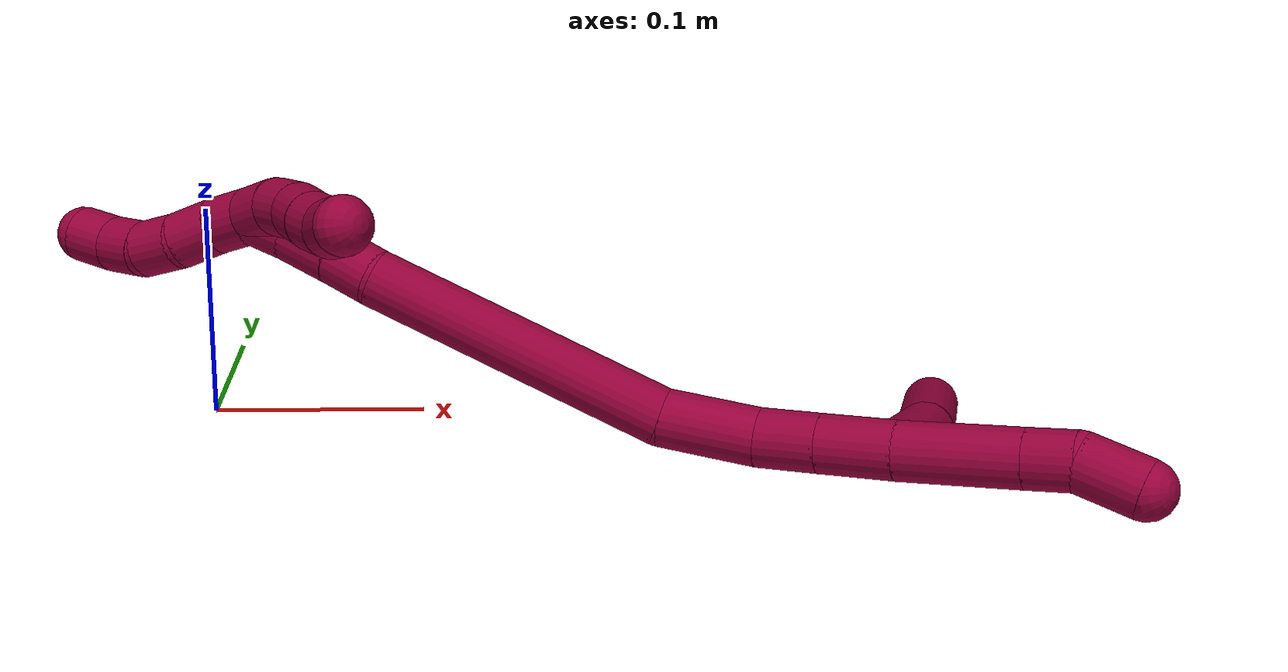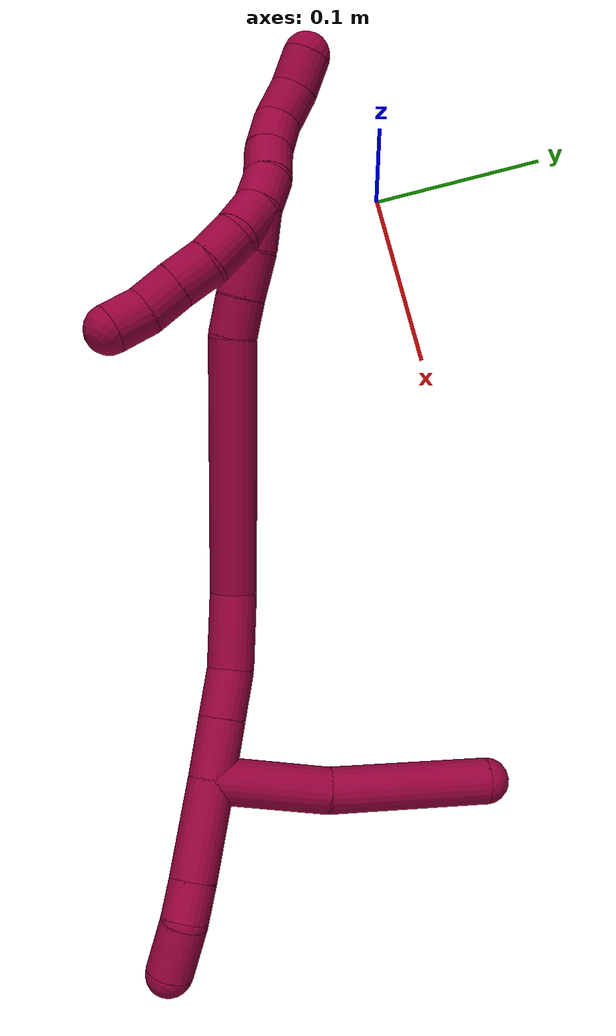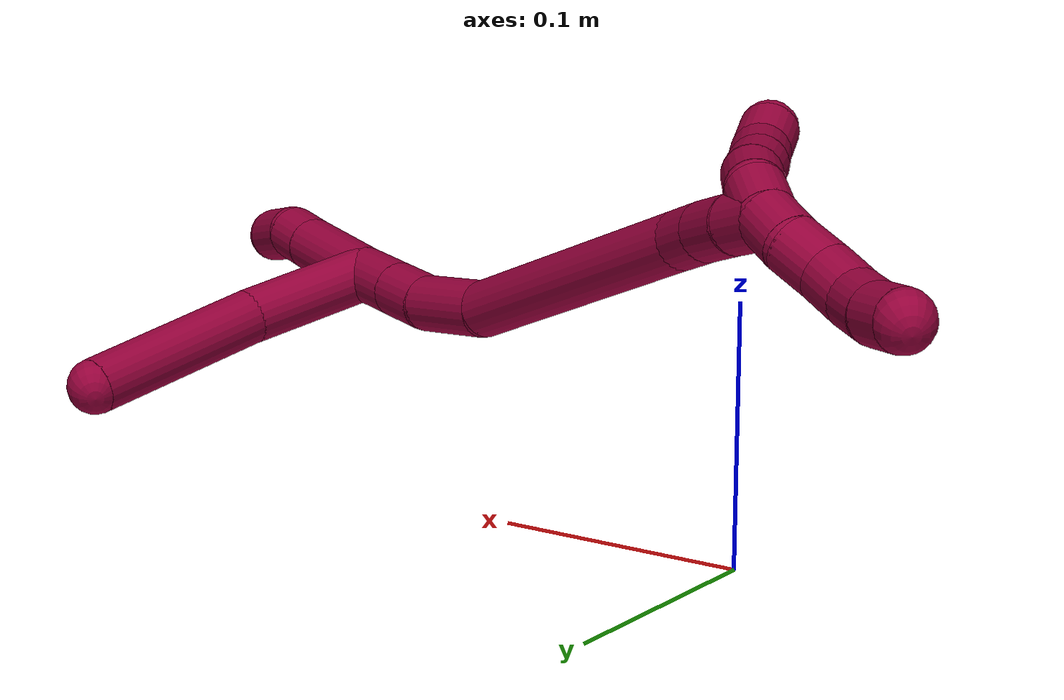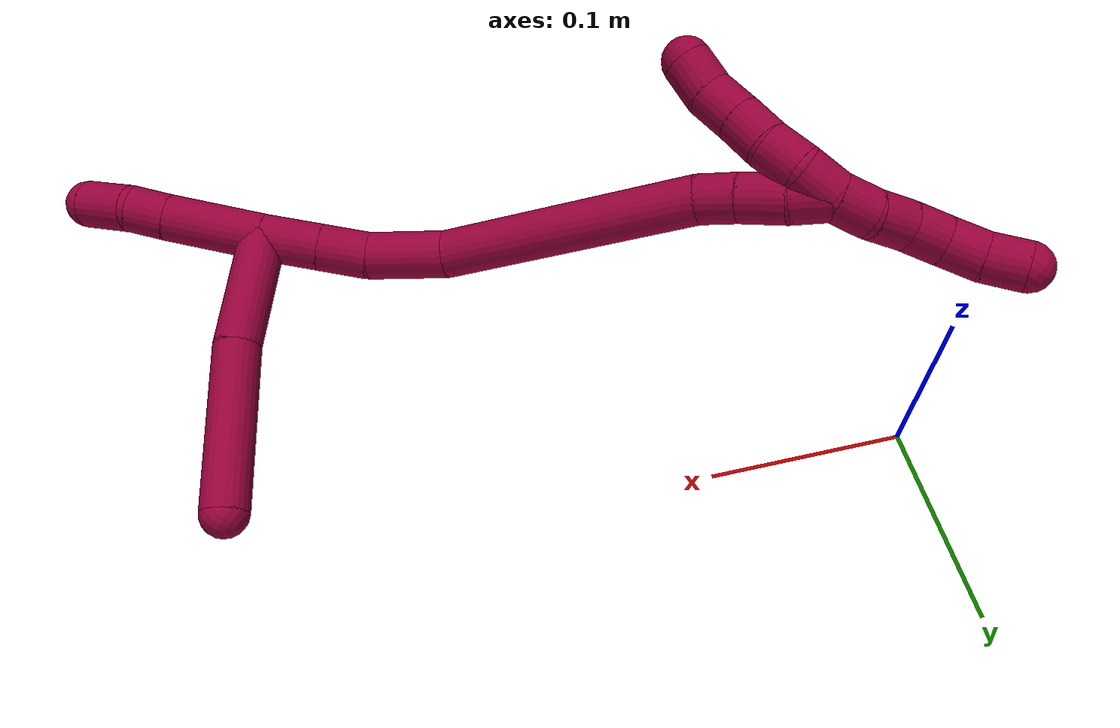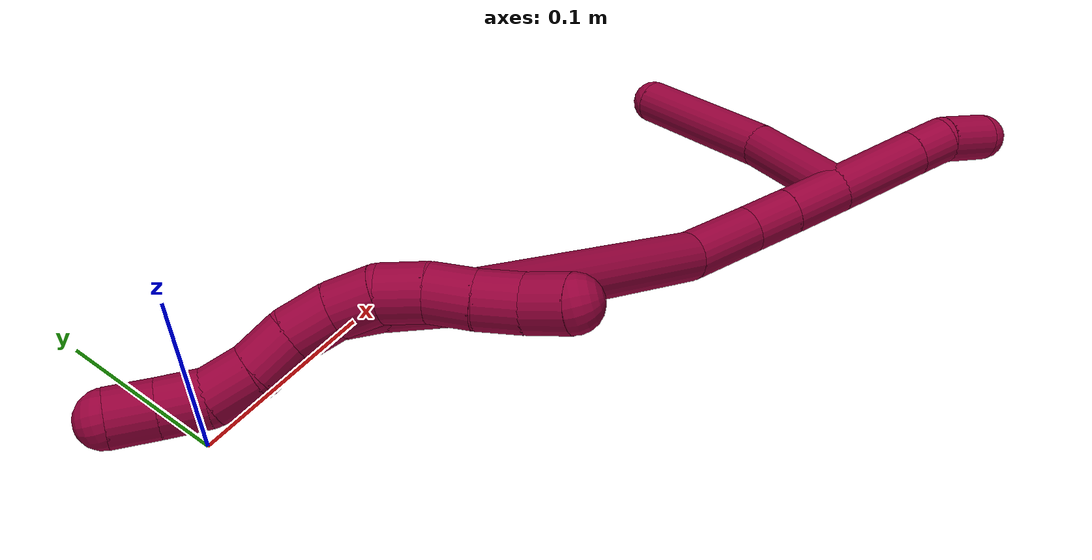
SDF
<sdf version="1.7">
 <world name="default">
  <model name="8">
   <static>0</static>
   <link name="8">
    <collision name="collision-cylinder-e_1_2_8">
     <pose>0.02655 0.007749 -0.014707 -2.65667 1.0114 -2.30145</pose>
     <geometry><cylinder><radius>0.0125</radius><length>0.062649</length></cylinder></geometry>
     <surface>
      <friction><ode><mu>1.16</mu><mu2>1.16</mu2><slip1>0</slip1><slip2>0</slip2></ode></friction>
      <contact><ode><kp>1e+06</kp><kd>1</kd><max_vel>0</max_vel><min_depth>0.001</min_depth></ode></contact>
     </surface>
    </collision>
    <visual name="visual-cylinder-e_1_2_8">
     <pose>0.02655 0.007749 -0.014707 -2.65667 1.0114 -2.30145</pose>
     <geometry><cylinder><radius>0.0125</radius><length>0.062649</length></cylinder></geometry>
     <material><ambient>0.584314 0 0.227451 1</ambient></material>
    </visual>
    <collision name="collision-cylinder-e_2_8_6">
     <pose>0.086528 0.026399 -0.055322 -2.74332 0.87162 -2.3237</pose>
     <geometry><cylinder><radius>0.0125</radius><length>0.087351</length></cylinder></geometry>
     <surface>
      <friction><ode><mu>1.16</mu><mu2>1.16</mu2><slip1>0</slip1><slip2>0</slip2></ode></friction>
      <contact><ode><kp>1e+06</kp><kd>1</kd><max_vel>0</max_vel><min_depth>0.001</min_depth></ode></contact>
     </surface>
    </collision>
    <visual name="visual-cylinder-e_2_8_6">
     <pose>0.086528 0.026399 -0.055322 -2.74332 0.87162 -2.3237</pose>
     <geometry><cylinder><radius>0.0125</radius><length>0.087351</length></cylinder></geometry>
     <material><ambient>0.584314 0 0.227451 1</ambient></material>
    </visual>
    <collision name="collision-cylinder-e_1_2_9">
     <pose>0.010638 0.000432 0.023554 -0.018354 0.42414 -0.003952</pose>
     <geometry><cylinder><radius>0.0125</radius><length>0.051698</length></cylinder></geometry>
     <surface>
      <friction><ode><mu>1.16</mu><mu2>1.16</mu2><slip1>0</slip1><slip2>0</slip2></ode></friction>
      <contact><ode><kp>1e+06</kp><kd>1</kd><max_vel>0</max_vel><min_depth>0.001</min_depth></ode></contact>
     </surface>
    </collision>
    <visual name="visual-cylinder-e_1_2_9">
     <pose>0.010638 0.000432 0.023554 -0.018354 0.42414 -0.003952</pose>
     <geometry><cylinder><radius>0.0125</radius><length>0.051698</length></cylinder></geometry>
     <material><ambient>0.584314 0 0.227451 1</ambient></material>
    </visual>
    <collision name="collision-cylinder-e_2_9_10">
     <pose>0.025244 0.001082 0.056645 -0.022793 0.394205 -0.004552</pose>
     <geometry><cylinder><radius>0.0125</radius><length>0.020663</length></cylinder></geometry>
     <surface>
      <friction><ode><mu>1.16</mu><mu2>1.16</mu2><slip1>0</slip1><slip2>0</slip2></ode></friction>
      <contact><ode><kp>1e+06</kp><kd>1</kd><max_vel>0</max_vel><min_depth>0.001</min_depth></ode></contact>
     </surface>
    </collision>
    <visual name="visual-cylinder-e_2_9_10">
     <pose>0.025244 0.001082 0.056645 -0.022793 0.394205 -0.004552</pose>
     <geometry><cylinder><radius>0.0125</radius><length>0.020663</length></cylinder></geometry>
     <material><ambient>0.584314 0 0.227451 1</ambient></material>
    </visual>
    <collision name="collision-cylinder-e_3_10_5">
     <pose>0.034889 -0.003076 0.077998 0.354634 0.423323 0.076974</pose>
     <geometry><cylinder><radius>0.0125</radius><length>0.02764</length></cylinder></geometry>
     <surface>
      <friction><ode><mu>1.16</mu><mu2>1.16</mu2><slip1>0</slip1><slip2>0</slip2></ode></friction>
      <contact><ode><kp>1e+06</kp><kd>1</kd><max_vel>0</max_vel><min_depth>0.001</min_depth></ode></contact>
     </surface>
    </collision>
    <visual name="visual-cylinder-e_3_10_5">
     <pose>0.034889 -0.003076 0.077998 0.354634 0.423323 0.076974</pose>
     <geometry><cylinder><radius>0.0125</radius><length>0.02764</length></cylinder></geometry>
     <material><ambient>0.584314 0 0.227451 1</ambient></material>
    </visual>
    <collision name="collision-cylinder-e_1_2_11">
     <pose>-0.006957 0.000173 -0.014314 -3.12953 -0.452383 3.08918</pose>
     <geometry><cylinder><radius>0.0125</radius><length>0.031831</length></cylinder></geometry>
     <surface>
      <friction><ode><mu>1.16</mu><mu2>1.16</mu2><slip1>0</slip1><slip2>0</slip2></ode></friction>
      <contact><ode><kp>1e+06</kp><kd>1</kd><max_vel>0</max_vel><min_depth>0.001</min_depth></ode></contact>
     </surface>
    </collision>
    <visual name="visual-cylinder-e_1_2_11">
     <pose>-0.006957 0.000173 -0.014314 -3.12953 -0.452383 3.08918</pose>
     <geometry><cylinder><radius>0.0125</radius><length>0.031831</length></cylinder></geometry>
     <material><ambient>0.584314 0 0.227451 1</ambient></material>
    </visual>
    <collision name="collision-cylinder-e_2_11_12">
     <pose>-0.019645 0.000563 -0.040486 -3.12321 -0.450095 3.06134</pose>
     <geometry><cylinder><radius>0.0125</radius><length>0.026345</length></cylinder></geometry>
     <surface>
      <friction><ode><mu>1.16</mu><mu2>1.16</mu2><slip1>0</slip1><slip2>0</slip2></ode></friction>
      <contact><ode><kp>1e+06</kp><kd>1</kd><max_vel>0</max_vel><min_depth>0.001</min_depth></ode></contact>
     </surface>
    </collision>
    <visual name="visual-cylinder-e_2_11_12">
     <pose>-0.019645 0.000563 -0.040486 -3.12321 -0.450095 3.06134</pose>
     <geometry><cylinder><radius>0.0125</radius><length>0.026345</length></cylinder></geometry>
     <material><ambient>0.584314 0 0.227451 1</ambient></material>
    </visual>
    <collision name="collision-cylinder-e_3_12_13">
     <pose>-0.037425 0.002965 -0.06894 -3.01078 -0.623938 2.74084</pose>
     <geometry><cylinder><radius>0.0125</radius><length>0.04125</length></cylinder></geometry>
     <surface>
      <friction><ode><mu>1.16</mu><mu2>1.16</mu2><slip1>0</slip1><slip2>0</slip2></ode></friction>
      <contact><ode><kp>1e+06</kp><kd>1</kd><max_vel>0</max_vel><min_depth>0.001</min_depth></ode></contact>
     </surface>
    </collision>
    <visual name="visual-cylinder-e_3_12_13">
     <pose>-0.037425 0.002965 -0.06894 -3.01078 -0.623938 2.74084</pose>
     <geometry><cylinder><radius>0.0125</radius><length>0.04125</length></cylinder></geometry>
     <material><ambient>0.584314 0 0.227451 1</ambient></material>
    </visual>
    <collision name="collision-cylinder-e_4_13_14">
     <pose>-0.093753 0.027862 -0.13142 -2.68193 -0.713051 2.0198</pose>
     <geometry><cylinder><radius>0.0125</radius><length>0.135378</length></cylinder></geometry>
     <surface>
      <friction><ode><mu>1.16</mu><mu2>1.16</mu2><slip1>0</slip1><slip2>0</slip2></ode></friction>
      <contact><ode><kp>1e+06</kp><kd>1</kd><max_vel>0</max_vel><min_depth>0.001</min_depth></ode></contact>
     </surface>
    </collision>
    <visual name="visual-cylinder-e_4_13_14">
     <pose>-0.093753 0.027862 -0.13142 -2.68193 -0.713051 2.0198</pose>
     <geometry><cylinder><radius>0.0125</radius><length>0.135378</length></cylinder></geometry>
     <material><ambient>0.584314 0 0.227451 1</ambient></material>
    </visual>
    <collision name="collision-cylinder-e_5_14_15">
     <pose>-0.143053 0.054594 -0.185301 -2.67613 -0.511308 1.66842</pose>
     <geometry><cylinder><radius>0.0125</radius><length>0.020526</length></cylinder></geometry>
     <surface>
      <friction><ode><mu>1.16</mu><mu2>1.16</mu2><slip1>0</slip1><slip2>0</slip2></ode></friction>
      <contact><ode><kp>1e+06</kp><kd>1</kd><max_vel>0</max_vel><min_depth>0.001</min_depth></ode></contact>
     </surface>
    </collision>
    <visual name="visual-cylinder-e_5_14_15">
     <pose>-0.143053 0.054594 -0.185301 -2.67613 -0.511308 1.66842</pose>
     <geometry><cylinder><radius>0.0125</radius><length>0.020526</length></cylinder></geometry>
     <material><ambient>0.584314 0 0.227451 1</ambient></material>
    </visual>
    <collision name="collision-cylinder-e_6_15_16">
     <pose>-0.153451 0.063096 -0.203207 -2.71652 -0.459067 1.65021</pose>
     <geometry><cylinder><radius>0.0125</radius><length>0.024264</length></cylinder></geometry>
     <surface>
      <friction><ode><mu>1.16</mu><mu2>1.16</mu2><slip1>0</slip1><slip2>0</slip2></ode></friction>
      <contact><ode><kp>1e+06</kp><kd>1</kd><max_vel>0</max_vel><min_depth>0.001</min_depth></ode></contact>
     </surface>
    </collision>
    <visual name="visual-cylinder-e_6_15_16">
     <pose>-0.153451 0.063096 -0.203207 -2.71652 -0.459067 1.65021</pose>
     <geometry><cylinder><radius>0.0125</radius><length>0.024264</length></cylinder></geometry>
     <material><ambient>0.584314 0 0.227451 1</ambient></material>
    </visual>
    <collision name="collision-cylinder-e_7_16_1">
     <pose>-0.164499 0.070736 -0.220988 -2.76041 -0.589421 2.00924</pose>
     <geometry><cylinder><radius>0.0125</radius><length>0.020406</length></cylinder></geometry>
     <surface>
      <friction><ode><mu>1.16</mu><mu2>1.16</mu2><slip1>0</slip1><slip2>0</slip2></ode></friction>
      <contact><ode><kp>1e+06</kp><kd>1</kd><max_vel>0</max_vel><min_depth>0.001</min_depth></ode></contact>
     </surface>
    </collision>
    <visual name="visual-cylinder-e_7_16_1">
     <pose>-0.164499 0.070736 -0.220988 -2.76041 -0.589421 2.00924</pose>
     <geometry><cylinder><radius>0.0125</radius><length>0.020406</length></cylinder></geometry>
     <material><ambient>0.584314 0 0.227451 1</ambient></material>
    </visual>
    <collision name="collision-cylinder-e_1_1_17">
     <pose>-0.172376 0.071727 -0.238371 2.91785 -0.222453 -1.56495</pose>
     <geometry><cylinder><radius>0.0125</radius><length>0.02</length></cylinder></geometry>
     <surface>
      <friction><ode><mu>1.16</mu><mu2>1.16</mu2><slip1>0</slip1><slip2>0</slip2></ode></friction>
      <contact><ode><kp>1e+06</kp><kd>1</kd><max_vel>0</max_vel><min_depth>0.001</min_depth></ode></contact>
     </surface>
    </collision>
    <visual name="visual-cylinder-e_1_1_17">
     <pose>-0.172376 0.071727 -0.238371 2.91785 -0.222453 -1.56495</pose>
     <geometry><cylinder><radius>0.0125</radius><length>0.02</length></cylinder></geometry>
     <material><ambient>0.584314 0 0.227451 1</ambient></material>
    </visual>
    <collision name="collision-cylinder-e_2_17_18">
     <pose>-0.178449 0.065823 -0.256311 2.72398 -0.397005 -1.51878</pose>
     <geometry><cylinder><radius>0.0125</radius><length>0.02</length></cylinder></geometry>
     <surface>
      <friction><ode><mu>1.16</mu><mu2>1.16</mu2><slip1>0</slip1><slip2>0</slip2></ode></friction>
      <contact><ode><kp>1e+06</kp><kd>1</kd><max_vel>0</max_vel><min_depth>0.001</min_depth></ode></contact>
     </surface>
    </collision>
    <visual name="visual-cylinder-e_2_17_18">
     <pose>-0.178449 0.065823 -0.256311 2.72398 -0.397005 -1.51878</pose>
     <geometry><cylinder><radius>0.0125</radius><length>0.02</length></cylinder></geometry>
     <material><ambient>0.584314 0 0.227451 1</ambient></material>
    </visual>
    <collision name="collision-cylinder-e_3_18_19">
     <pose>-0.185087 0.060054 -0.274133 2.92885 -0.280766 -1.84746</pose>
     <geometry><cylinder><radius>0.0125</radius><length>0.02</length></cylinder></geometry>
     <surface>
      <friction><ode><mu>1.16</mu><mu2>1.16</mu2><slip1>0</slip1><slip2>0</slip2></ode></friction>
      <contact><ode><kp>1e+06</kp><kd>1</kd><max_vel>0</max_vel><min_depth>0.001</min_depth></ode></contact>
     </surface>
    </collision>
    <visual name="visual-cylinder-e_3_18_19">
     <pose>-0.185087 0.060054 -0.274133 2.92885 -0.280766 -1.84746</pose>
     <geometry><cylinder><radius>0.0125</radius><length>0.02</length></cylinder></geometry>
     <material><ambient>0.584314 0 0.227451 1</ambient></material>
    </visual>
    <collision name="collision-cylinder-e_4_19_20">
     <pose>-0.189735 0.0593 -0.293264 -3.01137 -0.188898 1.93592</pose>
     <geometry><cylinder><radius>0.0125</radius><length>0.02</length></cylinder></geometry>
     <surface>
      <friction><ode><mu>1.16</mu><mu2>1.16</mu2><slip1>0</slip1><slip2>0</slip2></ode></friction>
      <contact><ode><kp>1e+06</kp><kd>1</kd><max_vel>0</max_vel><min_depth>0.001</min_depth></ode></contact>
     </surface>
    </collision>
    <visual name="visual-cylinder-e_4_19_20">
     <pose>-0.189735 0.0593 -0.293264 -3.01137 -0.188898 1.93592</pose>
     <geometry><cylinder><radius>0.0125</radius><length>0.02</length></cylinder></geometry>
     <material><ambient>0.584314 0 0.227451 1</ambient></material>
    </visual>
    <collision name="collision-cylinder-e_5_20_4">
     <pose>-0.194833 0.062738 -0.31222 -2.91113 -0.327826 1.9204</pose>
     <geometry><cylinder><radius>0.0125</radius><length>0.02</length></cylinder></geometry>
     <surface>
      <friction><ode><mu>1.16</mu><mu2>1.16</mu2><slip1>0</slip1><slip2>0</slip2></ode></friction>
      <contact><ode><kp>1e+06</kp><kd>1</kd><max_vel>0</max_vel><min_depth>0.001</min_depth></ode></contact>
     </surface>
    </collision>
    <visual name="visual-cylinder-e_5_20_4">
     <pose>-0.194833 0.062738 -0.31222 -2.91113 -0.327826 1.9204</pose>
     <geometry><cylinder><radius>0.0125</radius><length>0.02</length></cylinder></geometry>
     <material><ambient>0.584314 0 0.227451 1</ambient></material>
    </visual>
    <collision name="collision-cylinder-e_1_1_21">
     <pose>-0.170473 0.075164 -0.218947 -0.127654 -0.03026 0.001934</pose>
     <geometry><cylinder><radius>0.0125</radius><length>0.02</length></cylinder></geometry>
     <surface>
      <friction><ode><mu>1.16</mu><mu2>1.16</mu2><slip1>0</slip1><slip2>0</slip2></ode></friction>
      <contact><ode><kp>1e+06</kp><kd>1</kd><max_vel>0</max_vel><min_depth>0.001</min_depth></ode></contact>
     </surface>
    </collision>
    <visual name="visual-cylinder-e_1_1_21">
     <pose>-0.170473 0.075164 -0.218947 -0.127654 -0.03026 0.001934</pose>
     <geometry><cylinder><radius>0.0125</radius><length>0.02</length></cylinder></geometry>
     <material><ambient>0.584314 0 0.227451 1</ambient></material>
    </visual>
    <collision name="collision-cylinder-e_2_21_22">
     <pose>-0.171702 0.074524 -0.199261 0.19331 -0.09282 -0.009006</pose>
     <geometry><cylinder><radius>0.0125</radius><length>0.02</length></cylinder></geometry>
     <surface>
      <friction><ode><mu>1.16</mu><mu2>1.16</mu2><slip1>0</slip1><slip2>0</slip2></ode></friction>
      <contact><ode><kp>1e+06</kp><kd>1</kd><max_vel>0</max_vel><min_depth>0.001</min_depth></ode></contact>
     </surface>
    </collision>
    <visual name="visual-cylinder-e_2_21_22">
     <pose>-0.171702 0.074524 -0.199261 0.19331 -0.09282 -0.009006</pose>
     <geometry><cylinder><radius>0.0125</radius><length>0.02</length></cylinder></geometry>
     <material><ambient>0.584314 0 0.227451 1</ambient></material>
    </visual>
    <collision name="collision-cylinder-e_3_22_23">
     <pose>-0.175039 0.069535 -0.180285 0.322452 -0.24341 -0.039779</pose>
     <geometry><cylinder><radius>0.0125</radius><length>0.02</length></cylinder></geometry>
     <surface>
      <friction><ode><mu>1.16</mu><mu2>1.16</mu2><slip1>0</slip1><slip2>0</slip2></ode></friction>
      <contact><ode><kp>1e+06</kp><kd>1</kd><max_vel>0</max_vel><min_depth>0.001</min_depth></ode></contact>
     </surface>
    </collision>
    <visual name="visual-cylinder-e_3_22_23">
     <pose>-0.175039 0.069535 -0.180285 0.322452 -0.24341 -0.039779</pose>
     <geometry><cylinder><radius>0.0125</radius><length>0.02</length></cylinder></geometry>
     <material><ambient>0.584314 0 0.227451 1</ambient></material>
    </visual>
    <collision name="collision-cylinder-e_4_23_24">
     <pose>-0.179319 0.063907 -0.161594 0.262915 -0.18806 -0.024938</pose>
     <geometry><cylinder><radius>0.0125</radius><length>0.02</length></cylinder></geometry>
     <surface>
      <friction><ode><mu>1.16</mu><mu2>1.16</mu2><slip1>0</slip1><slip2>0</slip2></ode></friction>
      <contact><ode><kp>1e+06</kp><kd>1</kd><max_vel>0</max_vel><min_depth>0.001</min_depth></ode></contact>
     </surface>
    </collision>
    <visual name="visual-cylinder-e_4_23_24">
     <pose>-0.179319 0.063907 -0.161594 0.262915 -0.18806 -0.024938</pose>
     <geometry><cylinder><radius>0.0125</radius><length>0.02</length></cylinder></geometry>
     <material><ambient>0.584314 0 0.227451 1</ambient></material>
    </visual>
    <collision name="collision-cylinder-e_5_24_3">
     <pose>-0.184874 0.060625 -0.14284 0.078418 -0.377434 -0.014984</pose>
     <geometry><cylinder><radius>0.0125</radius><length>0.02</length></cylinder></geometry>
     <surface>
      <friction><ode><mu>1.16</mu><mu2>1.16</mu2><slip1>0</slip1><slip2>0</slip2></ode></friction>
      <contact><ode><kp>1e+06</kp><kd>1</kd><max_vel>0</max_vel><min_depth>0.001</min_depth></ode></contact>
     </surface>
    </collision>
    <visual name="visual-cylinder-e_5_24_3">
     <pose>-0.184874 0.060625 -0.14284 0.078418 -0.377434 -0.014984</pose>
     <geometry><cylinder><radius>0.0125</radius><length>0.02</length></cylinder></geometry>
     <material><ambient>0.584314 0 0.227451 1</ambient></material>
    </visual>
    <collision name="collision-sphere-3">
     <pose>-0.188559 0.059897 -0.133572 0 -0 0</pose>
     <geometry><sphere><radius>0.0125</radius></sphere></geometry>
     <surface>
      <friction><ode><mu>1.16</mu><mu2>1.16</mu2><slip1>0</slip1><slip2>0</slip2></ode></friction>
      <contact><ode><kp>1e+06</kp><kd>1</kd><max_vel>0</max_vel><min_depth>0.001</min_depth></ode></contact>
     </surface>
    </collision>
    <visual name="visual-sphere-3">
     <pose>-0.188559 0.059897 -0.133572 0 -0 0</pose>
     <geometry><sphere><radius>0.0125</radius></sphere></geometry>
     <material><ambient>0.584314 0 0.227451 1</ambient></material>
    </visual>
    <collision name="collision-sphere-24">
     <pose>-0.181188 0.061353 -0.152107 0 -0 0</pose>
     <geometry><sphere><radius>0.0125</radius></sphere></geometry>
     <surface>
      <friction><ode><mu>1.16</mu><mu2>1.16</mu2><slip1>0</slip1><slip2>0</slip2></ode></friction>
      <contact><ode><kp>1e+06</kp><kd>1</kd><max_vel>0</max_vel><min_depth>0.001</min_depth></ode></contact>
     </surface>
    </collision>
    <visual name="visual-sphere-24">
     <pose>-0.181188 0.061353 -0.152107 0 -0 0</pose>
     <geometry><sphere><radius>0.0125</radius></sphere></geometry>
     <material><ambient>0.584314 0 0.227451 1</ambient></material>
    </visual>
    <collision name="collision-sphere-23">
     <pose>-0.177449 0.06646 -0.17108 0 -0 0</pose>
     <geometry><sphere><radius>0.0125</radius></sphere></geometry>
     <surface>
      <friction><ode><mu>1.16</mu><mu2>1.16</mu2><slip1>0</slip1><slip2>0</slip2></ode></friction>
      <contact><ode><kp>1e+06</kp><kd>1</kd><max_vel>0</max_vel><min_depth>0.001</min_depth></ode></contact>
     </surface>
    </collision>
    <visual name="visual-sphere-23">
     <pose>-0.177449 0.06646 -0.17108 0 -0 0</pose>
     <geometry><sphere><radius>0.0125</radius></sphere></geometry>
     <material><ambient>0.584314 0 0.227451 1</ambient></material>
    </visual>
    <collision name="collision-sphere-22">
     <pose>-0.172629 0.072611 -0.18949 0 -0 0</pose>
     <geometry><sphere><radius>0.0125</radius></sphere></geometry>
     <surface>
      <friction><ode><mu>1.16</mu><mu2>1.16</mu2><slip1>0</slip1><slip2>0</slip2></ode></friction>
      <contact><ode><kp>1e+06</kp><kd>1</kd><max_vel>0</max_vel><min_depth>0.001</min_depth></ode></contact>
     </surface>
    </collision>
    <visual name="visual-sphere-22">
     <pose>-0.172629 0.072611 -0.18949 0 -0 0</pose>
     <geometry><sphere><radius>0.0125</radius></sphere></geometry>
     <material><ambient>0.584314 0 0.227451 1</ambient></material>
    </visual>
    <collision name="collision-sphere-21">
     <pose>-0.170775 0.076436 -0.209033 0 -0 0</pose>
     <geometry><sphere><radius>0.0125</radius></sphere></geometry>
     <surface>
      <friction><ode><mu>1.16</mu><mu2>1.16</mu2><slip1>0</slip1><slip2>0</slip2></ode></friction>
      <contact><ode><kp>1e+06</kp><kd>1</kd><max_vel>0</max_vel><min_depth>0.001</min_depth></ode></contact>
     </surface>
    </collision>
    <visual name="visual-sphere-21">
     <pose>-0.170775 0.076436 -0.209033 0 -0 0</pose>
     <geometry><sphere><radius>0.0125</radius></sphere></geometry>
     <material><ambient>0.584314 0 0.227451 1</ambient></material>
    </visual>
    <collision name="collision-sphere-4">
     <pose>-0.198053 0.064901 -0.321437 0 -0 0</pose>
     <geometry><sphere><radius>0.0125</radius></sphere></geometry>
     <surface>
      <friction><ode><mu>1.16</mu><mu2>1.16</mu2><slip1>0</slip1><slip2>0</slip2></ode></friction>
      <contact><ode><kp>1e+06</kp><kd>1</kd><max_vel>0</max_vel><min_depth>0.001</min_depth></ode></contact>
     </surface>
    </collision>
    <visual name="visual-sphere-4">
     <pose>-0.198053 0.064901 -0.321437 0 -0 0</pose>
     <geometry><sphere><radius>0.0125</radius></sphere></geometry>
     <material><ambient>0.584314 0 0.227451 1</ambient></material>
    </visual>
    <collision name="collision-sphere-20">
     <pose>-0.191613 0.060576 -0.303003 0 -0 0</pose>
     <geometry><sphere><radius>0.0125</radius></sphere></geometry>
     <surface>
      <friction><ode><mu>1.16</mu><mu2>1.16</mu2><slip1>0</slip1><slip2>0</slip2></ode></friction>
      <contact><ode><kp>1e+06</kp><kd>1</kd><max_vel>0</max_vel><min_depth>0.001</min_depth></ode></contact>
     </surface>
    </collision>
    <visual name="visual-sphere-20">
     <pose>-0.191613 0.060576 -0.303003 0 -0 0</pose>
     <geometry><sphere><radius>0.0125</radius></sphere></geometry>
     <material><ambient>0.584314 0 0.227451 1</ambient></material>
    </visual>
    <collision name="collision-sphere-5">
     <pose>0.040566 -0.007451 0.089814 0 -0 0</pose>
     <geometry><sphere><radius>0.0125</radius></sphere></geometry>
     <surface>
      <friction><ode><mu>1.16</mu><mu2>1.16</mu2><slip1>0</slip1><slip2>0</slip2></ode></friction>
      <contact><ode><kp>1e+06</kp><kd>1</kd><max_vel>0</max_vel><min_depth>0.001</min_depth></ode></contact>
     </surface>
    </collision>
    <visual name="visual-sphere-5">
     <pose>0.040566 -0.007451 0.089814 0 -0 0</pose>
     <geometry><sphere><radius>0.0125</radius></sphere></geometry>
     <material><ambient>0.584314 0 0.227451 1</ambient></material>
    </visual>
    <collision name="collision-sphere-10">
     <pose>0.029212 0.0013 0.066182 0 -0 0</pose>
     <geometry><sphere><radius>0.0125</radius></sphere></geometry>
     <surface>
      <friction><ode><mu>1.16</mu><mu2>1.16</mu2><slip1>0</slip1><slip2>0</slip2></ode></friction>
      <contact><ode><kp>1e+06</kp><kd>1</kd><max_vel>0</max_vel><min_depth>0.001</min_depth></ode></contact>
     </surface>
    </collision>
    <visual name="visual-sphere-10">
     <pose>0.029212 0.0013 0.066182 0 -0 0</pose>
     <geometry><sphere><radius>0.0125</radius></sphere></geometry>
     <material><ambient>0.584314 0 0.227451 1</ambient></material>
    </visual>
    <collision name="collision-sphere-6">
     <pose>0.119956 0.0373 -0.081231 0 -0 0</pose>
     <geometry><sphere><radius>0.0125</radius></sphere></geometry>
     <surface>
      <friction><ode><mu>1.16</mu><mu2>1.16</mu2><slip1>0</slip1><slip2>0</slip2></ode></friction>
      <contact><ode><kp>1e+06</kp><kd>1</kd><max_vel>0</max_vel><min_depth>0.001</min_depth></ode></contact>
     </surface>
    </collision>
    <visual name="visual-sphere-6">
     <pose>0.119956 0.0373 -0.081231 0 -0 0</pose>
     <geometry><sphere><radius>0.0125</radius></sphere></geometry>
     <material><ambient>0.584314 0 0.227451 1</ambient></material>
    </visual>
    <collision name="collision-sphere-9">
     <pose>0.021275 0.000865 0.047109 0 -0 0</pose>
     <geometry><sphere><radius>0.0125</radius></sphere></geometry>
     <surface>
      <friction><ode><mu>1.16</mu><mu2>1.16</mu2><slip1>0</slip1><slip2>0</slip2></ode></friction>
      <contact><ode><kp>1e+06</kp><kd>1</kd><max_vel>0</max_vel><min_depth>0.001</min_depth></ode></contact>
     </surface>
    </collision>
    <visual name="visual-sphere-9">
     <pose>0.021275 0.000865 0.047109 0 -0 0</pose>
     <geometry><sphere><radius>0.0125</radius></sphere></geometry>
     <material><ambient>0.584314 0 0.227451 1</ambient></material>
    </visual>
    <collision name="collision-sphere-2">
     <geometry><sphere><radius>0.0125</radius></sphere></geometry>
     <surface>
      <friction><ode><mu>1.16</mu><mu2>1.16</mu2><slip1>0</slip1><slip2>0</slip2></ode></friction>
      <contact><ode><kp>1e+06</kp><kd>1</kd><max_vel>0</max_vel><min_depth>0.001</min_depth></ode></contact>
     </surface>
    </collision>
    <visual name="visual-sphere-2">
     <geometry><sphere><radius>0.0125</radius></sphere></geometry>
     <material><ambient>0.584314 0 0.227451 1</ambient></material>
    </visual>
    <collision name="collision-sphere-19">
     <pose>-0.187858 0.058025 -0.283525 0 -0 0</pose>
     <geometry><sphere><radius>0.0125</radius></sphere></geometry>
     <surface>
      <friction><ode><mu>1.16</mu><mu2>1.16</mu2><slip1>0</slip1><slip2>0</slip2></ode></friction>
      <contact><ode><kp>1e+06</kp><kd>1</kd><max_vel>0</max_vel><min_depth>0.001</min_depth></ode></contact>
     </surface>
    </collision>
    <visual name="visual-sphere-19">
     <pose>-0.187858 0.058025 -0.283525 0 -0 0</pose>
     <geometry><sphere><radius>0.0125</radius></sphere></geometry>
     <material><ambient>0.584314 0 0.227451 1</ambient></material>
    </visual>
    <collision name="collision-sphere-8">
     <pose>0.053099 0.015497 -0.029413 0 -0 0</pose>
     <geometry><sphere><radius>0.0125</radius></sphere></geometry>
     <surface>
      <friction><ode><mu>1.16</mu><mu2>1.16</mu2><slip1>0</slip1><slip2>0</slip2></ode></friction>
      <contact><ode><kp>1e+06</kp><kd>1</kd><max_vel>0</max_vel><min_depth>0.001</min_depth></ode></contact>
     </surface>
    </collision>
    <visual name="visual-sphere-8">
     <pose>0.053099 0.015497 -0.029413 0 -0 0</pose>
     <geometry><sphere><radius>0.0125</radius></sphere></geometry>
     <material><ambient>0.584314 0 0.227451 1</ambient></material>
    </visual>
    <collision name="collision-sphere-11">
     <pose>-0.013914 0.000345 -0.028627 0 -0 0</pose>
     <geometry><sphere><radius>0.0125</radius></sphere></geometry>
     <surface>
      <friction><ode><mu>1.16</mu><mu2>1.16</mu2><slip1>0</slip1><slip2>0</slip2></ode></friction>
      <contact><ode><kp>1e+06</kp><kd>1</kd><max_vel>0</max_vel><min_depth>0.001</min_depth></ode></contact>
     </surface>
    </collision>
    <visual name="visual-sphere-11">
     <pose>-0.013914 0.000345 -0.028627 0 -0 0</pose>
     <geometry><sphere><radius>0.0125</radius></sphere></geometry>
     <material><ambient>0.584314 0 0.227451 1</ambient></material>
    </visual>
    <collision name="collision-sphere-12">
     <pose>-0.025375 0.000781 -0.052345 0 -0 0</pose>
     <geometry><sphere><radius>0.0125</radius></sphere></geometry>
     <surface>
      <friction><ode><mu>1.16</mu><mu2>1.16</mu2><slip1>0</slip1><slip2>0</slip2></ode></friction>
      <contact><ode><kp>1e+06</kp><kd>1</kd><max_vel>0</max_vel><min_depth>0.001</min_depth></ode></contact>
     </surface>
    </collision>
    <visual name="visual-sphere-12">
     <pose>-0.025375 0.000781 -0.052345 0 -0 0</pose>
     <geometry><sphere><radius>0.0125</radius></sphere></geometry>
     <material><ambient>0.584314 0 0.227451 1</ambient></material>
    </visual>
    <collision name="collision-sphere-13">
     <pose>-0.049475 0.005148 -0.085536 0 -0 0</pose>
     <geometry><sphere><radius>0.0125</radius></sphere></geometry>
     <surface>
      <friction><ode><mu>1.16</mu><mu2>1.16</mu2><slip1>0</slip1><slip2>0</slip2></ode></friction>
      <contact><ode><kp>1e+06</kp><kd>1</kd><max_vel>0</max_vel><min_depth>0.001</min_depth></ode></contact>
     </surface>
    </collision>
    <visual name="visual-sphere-13">
     <pose>-0.049475 0.005148 -0.085536 0 -0 0</pose>
     <geometry><sphere><radius>0.0125</radius></sphere></geometry>
     <material><ambient>0.584314 0 0.227451 1</ambient></material>
    </visual>
    <collision name="collision-sphere-14">
     <pose>-0.138032 0.050576 -0.177303 0 -0 0</pose>
     <geometry><sphere><radius>0.0125</radius></sphere></geometry>
     <surface>
      <friction><ode><mu>1.16</mu><mu2>1.16</mu2><slip1>0</slip1><slip2>0</slip2></ode></friction>
      <contact><ode><kp>1e+06</kp><kd>1</kd><max_vel>0</max_vel><min_depth>0.001</min_depth></ode></contact>
     </surface>
    </collision>
    <visual name="visual-sphere-14">
     <pose>-0.138032 0.050576 -0.177303 0 -0 0</pose>
     <geometry><sphere><radius>0.0125</radius></sphere></geometry>
     <material><ambient>0.584314 0 0.227451 1</ambient></material>
    </visual>
    <collision name="collision-sphere-15">
     <pose>-0.148075 0.058611 -0.1933 0 -0 0</pose>
     <geometry><sphere><radius>0.0125</radius></sphere></geometry>
     <surface>
      <friction><ode><mu>1.16</mu><mu2>1.16</mu2><slip1>0</slip1><slip2>0</slip2></ode></friction>
      <contact><ode><kp>1e+06</kp><kd>1</kd><max_vel>0</max_vel><min_depth>0.001</min_depth></ode></contact>
     </surface>
    </collision>
    <visual name="visual-sphere-15">
     <pose>-0.148075 0.058611 -0.1933 0 -0 0</pose>
     <geometry><sphere><radius>0.0125</radius></sphere></geometry>
     <material><ambient>0.584314 0 0.227451 1</ambient></material>
    </visual>
    <collision name="collision-sphere-16">
     <pose>-0.158827 0.067581 -0.213115 0 -0 0</pose>
     <geometry><sphere><radius>0.0125</radius></sphere></geometry>
     <surface>
      <friction><ode><mu>1.16</mu><mu2>1.16</mu2><slip1>0</slip1><slip2>0</slip2></ode></friction>
      <contact><ode><kp>1e+06</kp><kd>1</kd><max_vel>0</max_vel><min_depth>0.001</min_depth></ode></contact>
     </surface>
    </collision>
    <visual name="visual-sphere-16">
     <pose>-0.158827 0.067581 -0.213115 0 -0 0</pose>
     <geometry><sphere><radius>0.0125</radius></sphere></geometry>
     <material><ambient>0.584314 0 0.227451 1</ambient></material>
    </visual>
    <collision name="collision-sphere-1">
     <pose>-0.17017 0.073891 -0.228861 0 -0 0</pose>
     <geometry><sphere><radius>0.0125</radius></sphere></geometry>
     <surface>
      <friction><ode><mu>1.16</mu><mu2>1.16</mu2><slip1>0</slip1><slip2>0</slip2></ode></friction>
      <contact><ode><kp>1e+06</kp><kd>1</kd><max_vel>0</max_vel><min_depth>0.001</min_depth></ode></contact>
     </surface>
    </collision>
    <visual name="visual-sphere-1">
     <pose>-0.17017 0.073891 -0.228861 0 -0 0</pose>
     <geometry><sphere><radius>0.0125</radius></sphere></geometry>
     <material><ambient>0.584314 0 0.227451 1</ambient></material>
    </visual>
    <collision name="collision-sphere-18">
     <pose>-0.182316 0.062082 -0.264741 0 -0 0</pose>
     <geometry><sphere><radius>0.0125</radius></sphere></geometry>
     <surface>
      <friction><ode><mu>1.16</mu><mu2>1.16</mu2><slip1>0</slip1><slip2>0</slip2></ode></friction>
      <contact><ode><kp>1e+06</kp><kd>1</kd><max_vel>0</max_vel><min_depth>0.001</min_depth></ode></contact>
     </surface>
    </collision>
    <visual name="visual-sphere-18">
     <pose>-0.182316 0.062082 -0.264741 0 -0 0</pose>
     <geometry><sphere><radius>0.0125</radius></sphere></geometry>
     <material><ambient>0.584314 0 0.227451 1</ambient></material>
    </visual>
    <collision name="collision-sphere-17">
     <pose>-0.174583 0.069563 -0.247882 0 -0 0</pose>
     <geometry><sphere><radius>0.0125</radius></sphere></geometry>
     <surface>
      <friction><ode><mu>1.16</mu><mu2>1.16</mu2><slip1>0</slip1><slip2>0</slip2></ode></friction>
      <contact><ode><kp>1e+06</kp><kd>1</kd><max_vel>0</max_vel><min_depth>0.001</min_depth></ode></contact>
     </surface>
    </collision>
    <visual name="visual-sphere-17">
     <pose>-0.174583 0.069563 -0.247882 0 -0 0</pose>
     <geometry><sphere><radius>0.0125</radius></sphere></geometry>
     <material><ambient>0.584314 0 0.227451 1</ambient></material>
    </visual>
    <inertial>
     <pose>-0.066362 0.032038 -0.10954 0 -0 0</pose>
     <mass>0.75</mass>
     <inertia><ixx>1.5e-05</ixx><ixy>0</ixy><ixz>0</ixz><iyy>0.00037</iyy><iyz>0</iyz><izz>-2.9e-05</izz></inertia>
    </inertial>
   </link>
   <pose>0.299253 -0.171296 0.042865 1.30425 0.376232 0.647019</pose>
  </model>
 </world>
</sdf>
